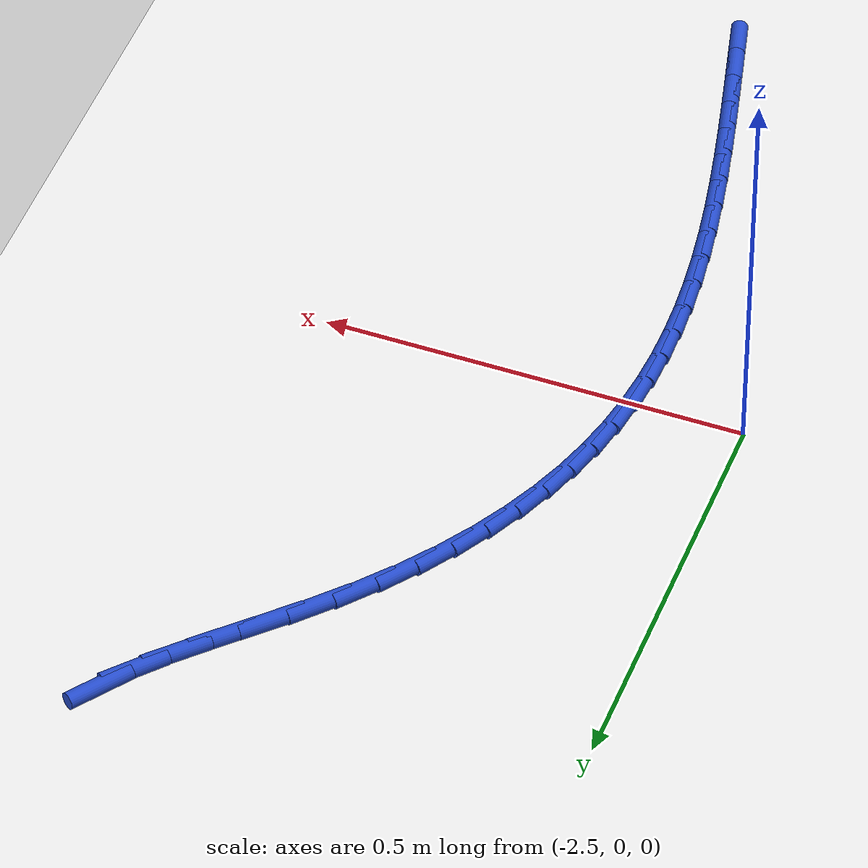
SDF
<sdf version="1.6">
 <world name="default">
  <model name="ground_plane">
   <static>1</static>
   <link name="link">
    <collision name="collision">
     <geometry><plane><normal>0 0 1</normal><size>100 100</size></plane></geometry>
     <surface><friction><ode><mu>100</mu><mu2>50</mu2></ode></friction></surface>
    </collision>
    <visual name="visual">
     <cast_shadows>0</cast_shadows>
     <geometry><plane><normal>0 0 1</normal><size>100 100</size></plane></geometry>
     <material>
      <script><uri>file://media/materials/scripts/gazebo.material</uri><name>Gazebo/WhiteGlow</name></script>
     </material>
    </visual>
   </link>
  </model>
  <model name="line">
   <link name="link_74">
    <pose>-1.974963987404465 0.6096906007135611 0.01 0 1.57 0.9489821944028595</pose>
    <collision name="collision">
     <geometry><cylinder><radius>0.01</radius><length>0.08</length></cylinder></geometry>
    </collision>
    <visual name="visual">
     <material>
      <script><name>Gazebo/Blue</name><uri>file://media/materials/scripts/gazebo.material</uri></script>
     </material>
     <geometry><cylinder><radius>0.01</radius><length>0.08</length></cylinder></geometry>
    </visual>
   </link>
   <link name="link_75">
    <pose>-2.000945794834938 0.5734361383307197 0.01 0 1.57 0.848654528044324</pose>
    <collision name="collision">
     <geometry><cylinder><radius>0.01</radius><length>0.08</length></cylinder></geometry>
    </collision>
    <visual name="visual">
     <material>
      <script><name>Gazebo/Blue</name><uri>file://media/materials/scripts/gazebo.material</uri></script>
     </material>
     <geometry><cylinder><radius>0.01</radius><length>0.08</length></cylinder></geometry>
    </visual>
   </link>
   <link name="link_76">
    <pose>-2.034424859685278 0.5354290802188064 0.01 0 1.57 0.7980666524254405</pose>
    <collision name="collision">
     <geometry><cylinder><radius>0.01</radius><length>0.08</length></cylinder></geometry>
    </collision>
    <visual name="visual">
     <material>
      <script><name>Gazebo/Blue</name><uri>file://media/materials/scripts/gazebo.material</uri></script>
     </material>
     <geometry><cylinder><radius>0.01</radius><length>0.08</length></cylinder></geometry>
    </visual>
   </link>
   <link name="link_77">
    <pose>-2.072756356843009 0.4961138638968376 0.01 0 1.57 0.7809361504040183</pose>
    <collision name="collision">
     <geometry><cylinder><radius>0.01</radius><length>0.08</length></cylinder></geometry>
    </collision>
    <visual name="visual">
     <material>
      <script><name>Gazebo/Blue</name><uri>file://media/materials/scripts/gazebo.material</uri></script>
     </material>
     <geometry><cylinder><radius>0.01</radius><length>0.08</length></cylinder></geometry>
    </visual>
   </link>
   <link name="link_78">
    <pose>-2.113295461195654 0.4559349268838312 0.01 0 1.57 0.7915484339812228</pose>
    <collision name="collision">
     <geometry><cylinder><radius>0.01</radius><length>0.08</length></cylinder></geometry>
    </collision>
    <visual name="visual">
     <material>
      <script><name>Gazebo/Blue</name><uri>file://media/materials/scripts/gazebo.material</uri></script>
     </material>
     <geometry><cylinder><radius>0.01</radius><length>0.08</length></cylinder></geometry>
    </visual>
   </link>
   <link name="link_79">
    <pose>-2.1533973476307344 0.4153367066988035 0.01 0 1.57 0.8298150854866194</pose>
    <collision name="collision">
     <geometry><cylinder><radius>0.01</radius><length>0.08</length></cylinder></geometry>
    </collision>
    <visual name="visual">
     <material>
      <script><name>Gazebo/Blue</name><uri>file://media/materials/scripts/gazebo.material</uri></script>
     </material>
     <geometry><cylinder><radius>0.01</radius><length>0.08</length></cylinder></geometry>
    </visual>
   </link>
   <link name="link_80">
    <pose>-2.1905358220669897 0.37474335133330083 0.01 0 1.57 0.8831038718467727</pose>
    <collision name="collision">
     <geometry><cylinder><radius>0.01</radius><length>0.08</length></cylinder></geometry>
    </collision>
    <visual name="visual">
     <material>
      <script><name>Gazebo/Blue</name><uri>file://media/materials/scripts/gazebo.material</uri></script>
     </material>
     <geometry><cylinder><radius>0.01</radius><length>0.08</length></cylinder></geometry>
    </visual>
   </link>
   <link name="link_81">
    <pose>-2.223749191869602 0.3343114312761673 0.01 0 1.57 0.9400494006491185</pose>
    <collision name="collision">
     <geometry><cylinder><radius>0.01</radius><length>0.08</length></cylinder></geometry>
    </collision>
    <visual name="visual">
     <material>
      <script><name>Gazebo/Blue</name><uri>file://media/materials/scripts/gazebo.material</uri></script>
     </material>
     <geometry><cylinder><radius>0.01</radius><length>0.08</length></cylinder></geometry>
    </visual>
   </link>
   <link name="link_82">
    <pose>-2.253180763546311 0.29400852843350916 0.01 0 1.57 1.0000424222144926</pose>
    <collision name="collision">
     <geometry><cylinder><radius>0.01</radius><length>0.08</length></cylinder></geometry>
    </collision>
    <visual name="visual">
     <material>
      <script><name>Gazebo/Blue</name><uri>file://media/materials/scripts/gazebo.material</uri></script>
     </material>
     <geometry><cylinder><radius>0.01</radius><length>0.08</length></cylinder></geometry>
    </visual>
   </link>
   <link name="link_83">
    <pose>-2.278997076654959 0.25379825115069116 0.01 0 1.57 1.0625606667311316</pose>
    <collision name="collision">
     <geometry><cylinder><radius>0.01</radius><length>0.08</length></cylinder></geometry>
    </collision>
    <visual name="visual">
     <material>
      <script><name>Gazebo/Blue</name><uri>file://media/materials/scripts/gazebo.material</uri></script>
     </material>
     <geometry><cylinder><radius>0.01</radius><length>0.08</length></cylinder></geometry>
    </visual>
   </link>
   <link name="link_84">
    <pose>-2.301364670753388 0.21364420777307966 0.01 0 1.57 1.1269075592928877</pose>
    <collision name="collision">
     <geometry><cylinder><radius>0.01</radius><length>0.08</length></cylinder></geometry>
    </collision>
    <visual name="visual">
     <material>
      <script><name>Gazebo/Blue</name><uri>file://media/materials/scripts/gazebo.material</uri></script>
     </material>
     <geometry><cylinder><radius>0.01</radius><length>0.08</length></cylinder></geometry>
    </visual>
   </link>
   <link name="link_85">
    <pose>-2.32045008539944 0.17351000664603916 0.01 0 1.57 1.1922351141094962</pose>
    <collision name="collision">
     <geometry><cylinder><radius>0.01</radius><length>0.08</length></cylinder></geometry>
    </collision>
    <visual name="visual">
     <material>
      <script><name>Gazebo/Blue</name><uri>file://media/materials/scripts/gazebo.material</uri></script>
     </material>
     <geometry><cylinder><radius>0.01</radius><length>0.08</length></cylinder></geometry>
    </visual>
   </link>
   <link name="link_86">
    <pose>-2.3364198601509583 0.13335925611493615 0.01 0 1.57 1.2575889560121243</pose>
    <collision name="collision">
     <geometry><cylinder><radius>0.01</radius><length>0.08</length></cylinder></geometry>
    </collision>
    <visual name="visual">
     <material>
      <script><name>Gazebo/Blue</name><uri>file://media/materials/scripts/gazebo.material</uri></script>
     </material>
     <geometry><cylinder><radius>0.01</radius><length>0.08</length></cylinder></geometry>
    </visual>
   </link>
   <link name="link_87">
    <pose>-2.3494405345657845 0.09315556452513543 0.01 0 1.57 1.321970594206224</pose>
    <collision name="collision">
     <geometry><cylinder><radius>0.01</radius><length>0.08</length></cylinder></geometry>
    </collision>
    <visual name="visual">
     <material>
      <script><name>Gazebo/Blue</name><uri>file://media/materials/scripts/gazebo.material</uri></script>
     </material>
     <geometry><cylinder><radius>0.01</radius><length>0.08</length></cylinder></geometry>
    </visual>
   </link>
   <link name="link_88">
    <pose>-2.359678648201762 0.05286254022200202 0.01 0 1.57 1.384407057336078</pose>
    <collision name="collision">
     <geometry><cylinder><radius>0.01</radius><length>0.08</length></cylinder></geometry>
    </collision>
    <visual name="visual">
     <material>
      <script><name>Gazebo/Blue</name><uri>file://media/materials/scripts/gazebo.material</uri></script>
     </material>
     <geometry><cylinder><radius>0.01</radius><length>0.08</length></cylinder></geometry>
    </visual>
   </link>
   <link name="link_89">
    <pose>-2.367300740616732 0.01244379155090224 0.01 0 1.57 1.444015703432741</pose>
    <collision name="collision">
     <geometry><cylinder><radius>0.01</radius><length>0.08</length></cylinder></geometry>
    </collision>
    <visual name="visual">
     <material>
      <script><name>Gazebo/Blue</name><uri>file://media/materials/scripts/gazebo.material</uri></script>
     </material>
     <geometry><cylinder><radius>0.01</radius><length>0.08</length></cylinder></geometry>
    </visual>
   </link>
   <link name="link_90">
    <pose>-2.3724733513685385 -0.02813707314279896 0.01 0 1.57 1.5000535374849786</pose>
    <collision name="collision">
     <geometry><cylinder><radius>0.01</radius><length>0.08</length></cylinder></geometry>
    </collision>
    <visual name="visual">
     <material>
      <script><name>Gazebo/Blue</name><uri>file://media/materials/scripts/gazebo.material</uri></script>
     </material>
     <geometry><cylinder><radius>0.01</radius><length>0.08</length></cylinder></geometry>
    </visual>
   </link>
   <link name="link_91">
    <pose>-2.3753630200150226 -0.06891644551373607 0.01 0 1.57 1.5519449741971663</pose>
    <collision name="collision">
     <geometry><cylinder><radius>0.01</radius><length>0.08</length></cylinder></geometry>
    </collision>
    <visual name="visual">
     <material>
      <script><name>Gazebo/Blue</name><uri>file://media/materials/scripts/gazebo.material</uri></script>
     </material>
     <geometry><cylinder><radius>0.01</radius><length>0.08</length></cylinder></geometry>
    </visual>
   </link>
   <link name="link_92">
    <pose>-2.376136286114027 -0.10993071721654467 0.01 0 1.57 -1.5423050473235242</pose>
    <collision name="collision">
     <geometry><cylinder><radius>0.01</radius><length>0.08</length></cylinder></geometry>
    </collision>
    <visual name="visual">
     <material>
      <script><name>Gazebo/Blue</name><uri>file://media/materials/scripts/gazebo.material</uri></script>
     </material>
     <geometry><cylinder><radius>0.01</radius><length>0.08</length></cylinder></geometry>
    </visual>
   </link>
   <link name="link_93">
    <pose>-2.374959689223395 -0.1512162799058575 0.01 0 1.57 -1.4997526070127567</pose>
    <collision name="collision">
     <geometry><cylinder><radius>0.01</radius><length>0.08</length></cylinder></geometry>
    </collision>
    <visual name="visual">
     <material>
      <script><name>Gazebo/Blue</name><uri>file://media/materials/scripts/gazebo.material</uri></script>
     </material>
     <geometry><cylinder><radius>0.01</radius><length>0.08</length></cylinder></geometry>
    </visual>
   </link>
   <link name="link_94">
    <pose>-2.371999768900967 -0.19280952523631006 0.01 0 1.57 -1.462094488622128</pose>
    <collision name="collision">
     <geometry><cylinder><radius>0.01</radius><length>0.08</length></cylinder></geometry>
    </collision>
    <visual name="visual">
     <material>
      <script><name>Gazebo/Blue</name><uri>file://media/materials/scripts/gazebo.material</uri></script>
     </material>
     <geometry><cylinder><radius>0.01</radius><length>0.08</length></cylinder></geometry>
    </visual>
   </link>
   <link name="link_95">
    <pose>-2.3674230647045875 -0.23474684486253686 0.01 0 1.57 -1.429326552133957</pose>
    <collision name="collision">
     <geometry><cylinder><radius>0.01</radius><length>0.08</length></cylinder></geometry>
    </collision>
    <visual name="visual">
     <material>
      <script><name>Gazebo/Blue</name><uri>file://media/materials/scripts/gazebo.material</uri></script>
     </material>
     <geometry><cylinder><radius>0.01</radius><length>0.08</length></cylinder></geometry>
    </visual>
   </link>
   <link name="link_96">
    <pose>-2.3613961161920978 -0.2770646304391726 0.01 0 1.57 -1.4013655474889186</pose>
    <collision name="collision">
     <geometry><cylinder><radius>0.01</radius><length>0.08</length></cylinder></geometry>
    </collision>
    <visual name="visual">
     <material>
      <script><name>Gazebo/Blue</name><uri>file://media/materials/scripts/gazebo.material</uri></script>
     </material>
     <geometry><cylinder><radius>0.01</radius><length>0.08</length></cylinder></geometry>
    </visual>
   </link>
   <link name="link_97">
    <pose>-2.3540854629213412 -0.3197992736208518 0.01 0 1.57 -1.3780752116472699</pose>
    <collision name="collision">
     <geometry><cylinder><radius>0.01</radius><length>0.08</length></cylinder></geometry>
    </collision>
    <visual name="visual">
     <material>
      <script><name>Gazebo/Blue</name><uri>file://media/materials/scripts/gazebo.material</uri></script>
     </material>
     <geometry><cylinder><radius>0.01</radius><length>0.08</length></cylinder></geometry>
    </visual>
   </link>
   <link name="link_98">
    <pose>-2.345657644450159 -0.36298716606220993 0.01 0 1.57 -1.3592877201621796</pose>
    <collision name="collision">
     <geometry><cylinder><radius>0.01</radius><length>0.08</length></cylinder></geometry>
    </collision>
    <visual name="visual">
     <material>
      <script><name>Gazebo/Blue</name><uri>file://media/materials/scripts/gazebo.material</uri></script>
     </material>
     <geometry><cylinder><radius>0.01</radius><length>0.08</length></cylinder></geometry>
    </visual>
   </link>
   <link name="link_99">
    <pose>-2.336279200336395 -0.40666469941787986 0.01 0 1.57 -1.3448201149242058</pose>
    <collision name="collision">
     <geometry><cylinder><radius>0.01</radius><length>0.08</length></cylinder></geometry>
    </collision>
    <visual name="visual">
     <material>
      <script><name>Gazebo/Blue</name><uri>file://media/materials/scripts/gazebo.material</uri></script>
     </material>
     <geometry><cylinder><radius>0.01</radius><length>0.08</length></cylinder></geometry>
    </visual>
   </link>
   <link name="link_100">
    <pose>-2.3261166701378895 -0.4508682653424968 0.01 0 1.57 -1.33448605299548</pose>
    <collision name="collision">
     <geometry><cylinder><radius>0.01</radius><length>0.08</length></cylinder></geometry>
    </collision>
    <visual name="visual">
     <material>
      <script><name>Gazebo/Blue</name><uri>file://media/materials/scripts/gazebo.material</uri></script>
     </material>
     <geometry><cylinder><radius>0.01</radius><length>0.08</length></cylinder></geometry>
    </visual>
   </link>
   <link name="link_101">
    <pose>-2.315336593412487 -0.4956342554906956 0.01 0 1.57 -1.328103562146305</pose>
    <collision name="collision">
     <geometry><cylinder><radius>0.01</radius><length>0.08</length></cylinder></geometry>
    </collision>
    <visual name="visual">
     <material>
      <script><name>Gazebo/Blue</name><uri>file://media/materials/scripts/gazebo.material</uri></script>
     </material>
     <geometry><cylinder><radius>0.01</radius><length>0.08</length></cylinder></geometry>
    </visual>
   </link>
   <link name="link_102">
    <pose>-2.3041055097180285 -0.5409990615171107 0.01 0 1.57 -1.3254995772359612</pose>
    <collision name="collision">
     <geometry><cylinder><radius>0.01</radius><length>0.08</length></cylinder></geometry>
    </collision>
    <visual name="visual">
     <material>
      <script><name>Gazebo/Blue</name><uri>file://media/materials/scripts/gazebo.material</uri></script>
     </material>
     <geometry><cylinder><radius>0.01</radius><length>0.08</length></cylinder></geometry>
    </visual>
   </link>
   <link name="link_103">
    <pose>-2.292589958612358 -0.5869990750763779 0.01 0 1.57 -1.3265119806158767</pose>
    <collision name="collision">
     <geometry><cylinder><radius>0.01</radius><length>0.08</length></cylinder></geometry>
    </collision>
    <visual name="visual">
     <material>
      <script><name>Gazebo/Blue</name><uri>file://media/materials/scripts/gazebo.material</uri></script>
     </material>
     <geometry><cylinder><radius>0.01</radius><length>0.08</length></cylinder></geometry>
    </visual>
   </link>
  </model>
 </world>
</sdf>
